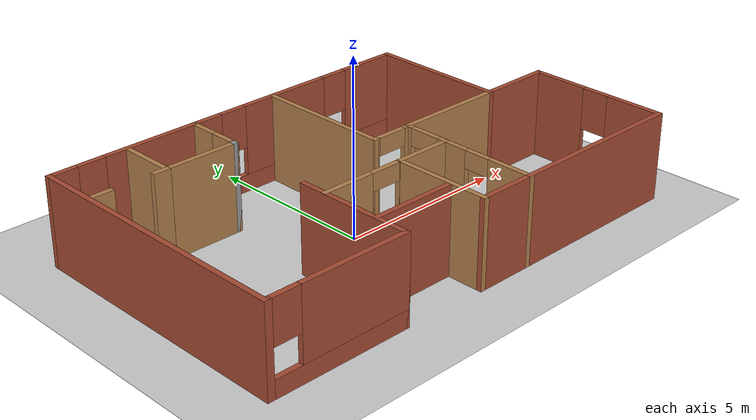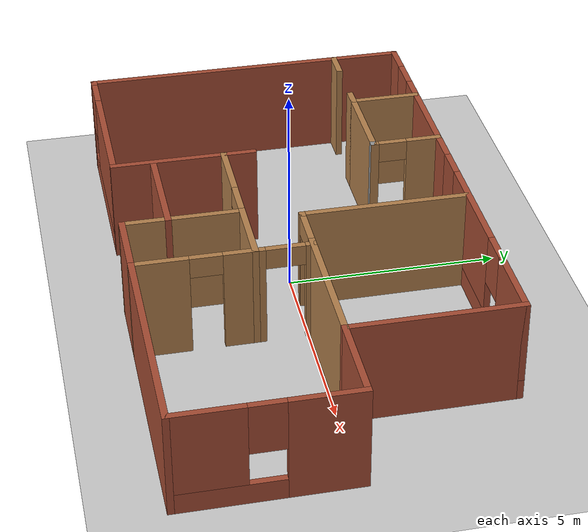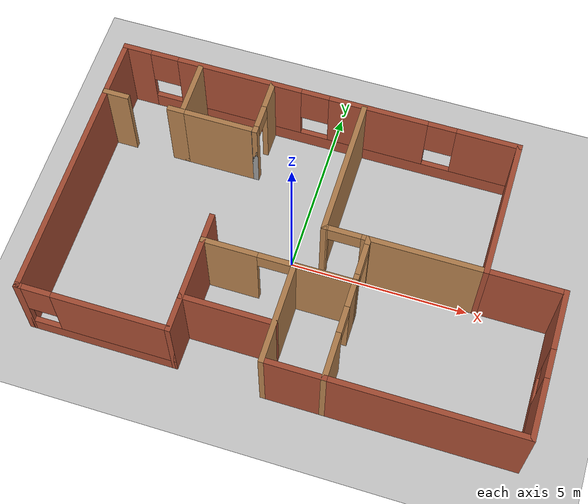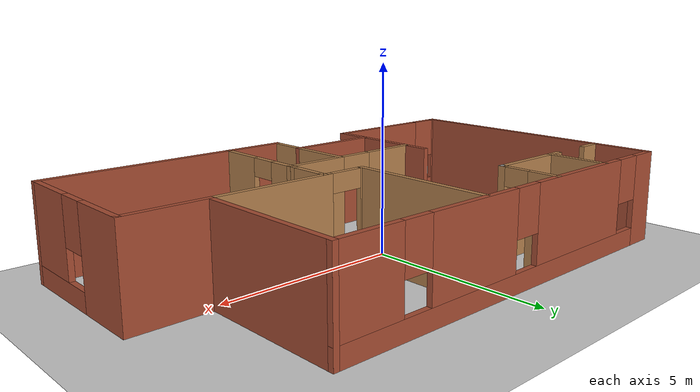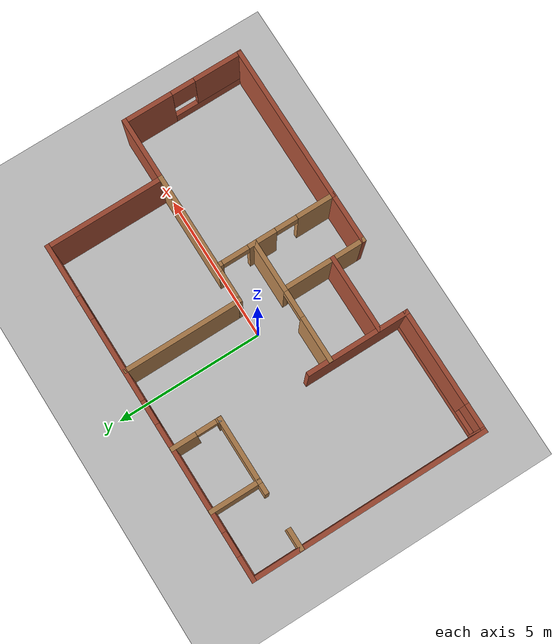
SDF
<sdf version="1.6">
 <world name="default">
  <light name="sun" type="directional">
   <pose>0 0 10 0 -0 0</pose>
   <diffuse>0.8 0.8 0.8 1</diffuse>
   <specular>0.2 0.2 0.2 1</specular>
   <attenuation>
    <range>1000</range>
    <constant>0.9</constant>
    <linear>0.01</linear>
    <quadratic>0.001</quadratic>
   </attenuation>
   <direction>-0.5 0.1 -0.9</direction>
  </light>
  <model name="ground_plane">
   <static>1</static>
   <link name="link">
    <collision name="collision">
     <geometry><plane><normal>0 0 1</normal><size>100 100</size></plane></geometry>
     <surface>
      <contact><collide_bitmask>65535</collide_bitmask></contact>
      <friction><ode><mu>100</mu><mu2>50</mu2></ode></friction>
     </surface>
    </collision>
    <visual name="visual">
     <cast_shadows>0</cast_shadows>
     <geometry><plane><normal>0 0 1</normal><size>100 100</size></plane></geometry>
     <material>
      <script><uri>file://media/materials/scripts/gazebo.material</uri><name>Gazebo/Grey</name></script>
     </material>
    </visual>
   </link>
  </model>
  <gravity>0 0 -9.8</gravity>
  <magnetic_field>6e-06 2.3e-05 -4.2e-05</magnetic_field>
  <atmosphere type="adiabatic"/>
  <physics name="default_physics" default="0" type="ode">
   <max_step_size>0.001</max_step_size>
   <real_time_factor>1</real_time_factor>
   <real_time_update_rate>1000</real_time_update_rate>
  </physics>
  <scene><ambient>0.4 0.4 0.4 1</ambient><background>0.7 0.7 0.7 1</background><shadows>1</shadows></scene>
  <audio><device>default</device></audio>
  <spherical_coordinates>
   <surface_model>EARTH_WGS84</surface_model>
   <latitude_deg>0</latitude_deg>
   <longitude_deg>0</longitude_deg>
   <elevation>0</elevation>
   <heading_deg>0</heading_deg>
  </spherical_coordinates>
  <model name="shreerang_2">
   <pose>0.5517 0.057998 0 0 -0 0</pose>
   <link name="Wall_0">
    <collision name="Wall_0_Collision">
     <geometry><box><size>8 0.15 2.5</size></box></geometry>
     <pose>0 0 1.25 0 -0 0</pose>
    </collision>
    <visual name="Wall_0_Visual">
     <pose>0 0 1.25 0 -0 0</pose>
     <geometry><box><size>8 0.15 2.5</size></box></geometry>
     <material>
      <script><uri>file://media/materials/scripts/gazebo.material</uri><name>Gazebo/Bricks</name></script>
      <ambient>1 1 1 1</ambient>
     </material>
     <meta><layer>0</layer></meta>
    </visual>
    <pose>-6.71199 0.050252 0 0 -0 -1.5708</pose>
   </link>
   <link name="Wall_1">
    <pose>-4.66199 -3.87475 0 0 -0 0</pose>
    <visual name="Wall_1_Visual_0">
     <pose>-2.02 0 1.25 0 -0 0</pose>
     <geometry><box><size>0.209993 0.15 2.5</size></box></geometry>
     <material>
      <script><uri>file://media/materials/scripts/gazebo.material</uri><name>Gazebo/Bricks</name></script>
      <ambient>1 1 1 1</ambient>
     </material>
     <meta><layer>0</layer></meta>
    </visual>
    <collision name="Wall_1_Collision_0">
     <geometry><box><size>0.209993 0.15 2.5</size></box></geometry>
     <pose>-2.02 0 1.25 0 -0 0</pose>
    </collision>
    <visual name="Wall_1_Visual_1">
     <pose>0.104997 0 0.25 0 -0 0</pose>
     <geometry><box><size>4.04001 0.15 0.5</size></box></geometry>
     <material>
      <script><uri>file://media/materials/scripts/gazebo.material</uri><name>Gazebo/Bricks</name></script>
      <ambient>1 1 1 1</ambient>
     </material>
     <meta><layer>0</layer></meta>
    </visual>
    <collision name="Wall_1_Collision_1">
     <geometry><box><size>4.04001 0.15 0.5</size></box></geometry>
     <pose>0.104997 0 0.25 0 -0 0</pose>
    </collision>
    <visual name="Wall_1_Visual_2">
     <pose>0.504997 0 1.5 0 -0 0</pose>
     <geometry><box><size>3.24001 0.15 2</size></box></geometry>
     <material>
      <script><uri>file://media/materials/scripts/gazebo.material</uri><name>Gazebo/Bricks</name></script>
      <ambient>1 1 1 1</ambient>
     </material>
     <meta><layer>0</layer></meta>
    </visual>
    <collision name="Wall_1_Collision_2">
     <geometry><box><size>3.24001 0.15 2</size></box></geometry>
     <pose>0.504997 0 1.5 0 -0 0</pose>
    </collision>
    <visual name="Wall_1_Visual_3">
     <pose>-1.51501 0 1.9 0 -0 0</pose>
     <geometry><box><size>0.8 0.15 1.2</size></box></geometry>
     <material>
      <script><uri>file://media/materials/scripts/gazebo.material</uri><name>Gazebo/Bricks</name></script>
      <ambient>1 1 1 1</ambient>
     </material>
     <meta><layer>0</layer></meta>
    </visual>
    <collision name="Wall_1_Collision_3">
     <geometry><box><size>0.8 0.15 1.2</size></box></geometry>
     <pose>-1.51501 0 1.9 0 -0 0</pose>
    </collision>
   </link>
   <link name="Wall_11">
    <pose>-1.03699 3.97508 0 0 -0 -3.1e-05</pose>
    <visual name="Wall_11_Visual_0">
     <pose>-5.33 0 1.25 0 -0 0</pose>
     <geometry><box><size>0.840002 0.15 2.5</size></box></geometry>
     <material>
      <script><uri>file://media/materials/scripts/gazebo.material</uri><name>Gazebo/Bricks</name></script>
      <ambient>1 1 1 1</ambient>
     </material>
     <meta><layer>0</layer></meta>
    </visual>
    <collision name="Wall_11_Collision_0">
     <geometry><box><size>0.840002 0.15 2.5</size></box></geometry>
     <pose>-5.33 0 1.25 0 -0 0</pose>
    </collision>
    <visual name="Wall_11_Visual_1">
     <pose>0.420001 0 0.25 0 -0 0</pose>
     <geometry><box><size>10.66 0.15 0.5</size></box></geometry>
     <material>
      <script><uri>file://media/materials/scripts/gazebo.material</uri><name>Gazebo/Bricks</name></script>
      <ambient>1 1 1 1</ambient>
     </material>
     <meta><layer>0</layer></meta>
    </visual>
    <collision name="Wall_11_Collision_1">
     <geometry><box><size>10.66 0.15 0.5</size></box></geometry>
     <pose>0.420001 0 0.25 0 -0 0</pose>
    </collision>
    <visual name="Wall_11_Visual_2">
     <pose>-2.295 0 1.5 0 -0 0</pose>
     <geometry><box><size>3.63 0.15 2</size></box></geometry>
     <material>
      <script><uri>file://media/materials/scripts/gazebo.material</uri><name>Gazebo/Bricks</name></script>
      <ambient>1 1 1 1</ambient>
     </material>
     <meta><layer>0</layer></meta>
    </visual>
    <collision name="Wall_11_Collision_2">
     <geometry><box><size>3.63 0.15 2</size></box></geometry>
     <pose>-2.295 0 1.5 0 -0 0</pose>
    </collision>
    <visual name="Wall_11_Visual_3">
     <pose>1.725 0 1.5 0 -0 0</pose>
     <geometry><box><size>2.81 0.15 2</size></box></geometry>
     <material>
      <script><uri>file://media/materials/scripts/gazebo.material</uri><name>Gazebo/Bricks</name></script>
      <ambient>1 1 1 1</ambient>
     </material>
     <meta><layer>0</layer></meta>
    </visual>
    <collision name="Wall_11_Collision_3">
     <geometry><box><size>2.81 0.15 2</size></box></geometry>
     <pose>1.725 0 1.5 0 -0 0</pose>
    </collision>
    <visual name="Wall_11_Visual_4">
     <pose>4.84 0 1.5 0 -0 0</pose>
     <geometry><box><size>1.82 0.15 2</size></box></geometry>
     <material>
      <script><uri>file://media/materials/scripts/gazebo.material</uri><name>Gazebo/Bricks</name></script>
      <ambient>1 1 1 1</ambient>
     </material>
     <meta><layer>0</layer></meta>
    </visual>
    <collision name="Wall_11_Collision_4">
     <geometry><box><size>1.82 0.15 2</size></box></geometry>
     <pose>4.84 0 1.5 0 -0 0</pose>
    </collision>
    <visual name="Wall_11_Visual_5">
     <pose>-4.51 0 1.9 0 -0 0</pose>
     <geometry><box><size>0.8 0.15 1.2</size></box></geometry>
     <material>
      <script><uri>file://media/materials/scripts/gazebo.material</uri><name>Gazebo/Bricks</name></script>
      <ambient>1 1 1 1</ambient>
     </material>
     <meta><layer>0</layer></meta>
    </visual>
    <collision name="Wall_11_Collision_5">
     <geometry><box><size>0.8 0.15 1.2</size></box></geometry>
     <pose>-4.51 0 1.9 0 -0 0</pose>
    </collision>
    <visual name="Wall_11_Visual_6">
     <pose>-0.080001 0 1.9 0 -0 0</pose>
     <geometry><box><size>0.8 0.15 1.2</size></box></geometry>
     <material>
      <script><uri>file://media/materials/scripts/gazebo.material</uri><name>Gazebo/Bricks</name></script>
      <ambient>1 1 1 1</ambient>
     </material>
     <meta><layer>0</layer></meta>
    </visual>
    <collision name="Wall_11_Collision_6">
     <geometry><box><size>0.8 0.15 1.2</size></box></geometry>
     <pose>-0.080001 0 1.9 0 -0 0</pose>
    </collision>
    <visual name="Wall_11_Visual_7">
     <pose>3.53 0 1.9 0 -0 0</pose>
     <geometry><box><size>0.8 0.15 1.2</size></box></geometry>
     <material>
      <script><uri>file://media/materials/scripts/gazebo.material</uri><name>Gazebo/Bricks</name></script>
      <ambient>1 1 1 1</ambient>
     </material>
     <meta><layer>0</layer></meta>
    </visual>
    <collision name="Wall_11_Collision_7">
     <geometry><box><size>0.8 0.15 1.2</size></box></geometry>
     <pose>3.53 0 1.9 0 -0 0</pose>
    </collision>
   </link>
   <link name="Wall_12">
    <collision name="Wall_12_Collision">
     <geometry><box><size>4.05926 0.15 2.5</size></box></geometry>
     <pose>0 0 1.25 0 -0 0</pose>
    </collision>
    <visual name="Wall_12_Visual">
     <pose>0 0 1.25 0 -0 0</pose>
     <geometry><box><size>4.05926 0.15 2.5</size></box></geometry>
     <material>
      <script><uri>file://media/materials/scripts/gazebo.material</uri><name>Gazebo/Bricks</name></script>
      <ambient>1 1 1 1</ambient>
     </material>
     <meta><layer>0</layer></meta>
    </visual>
    <pose>4.638 2.0204 0 0 -0 -1.5708</pose>
   </link>
   <link name="Wall_13">
    <collision name="Wall_13_Collision">
     <geometry><box><size>2.224 0.15 2.5</size></box></geometry>
     <pose>0 0 1.25 0 -0 0</pose>
    </collision>
    <visual name="Wall_13_Visual">
     <pose>0 0 1.25 0 -0 0</pose>
     <geometry><box><size>2.224 0.15 2.5</size></box></geometry>
     <material>
      <script><uri>file://media/materials/scripts/gazebo.material</uri><name>Gazebo/Bricks</name></script>
      <ambient>1 1 1 1</ambient>
     </material>
     <meta><layer>0</layer></meta>
    </visual>
    <pose>5.675 0.065902 0 0 -0 0</pose>
   </link>
   <link name="Wall_14">
    <pose>6.712 -1.9546 0 0 -0 -1.5708</pose>
    <visual name="Wall_14_Visual_0">
     <pose>-1.24534 0 1.25 0 -0 0</pose>
     <geometry><box><size>1.70023 0.15 2.5</size></box></geometry>
     <material>
      <script><uri>file://media/materials/scripts/gazebo.material</uri><name>Gazebo/Bricks</name></script>
      <ambient>1 1 1 1</ambient>
     </material>
     <meta><layer>0</layer></meta>
    </visual>
    <collision name="Wall_14_Collision_0">
     <geometry><box><size>1.70023 0.15 2.5</size></box></geometry>
     <pose>-1.24534 0 1.25 0 -0 0</pose>
    </collision>
    <visual name="Wall_14_Visual_1">
     <pose>0.850113 0 0.25 0 -0 0</pose>
     <geometry><box><size>2.49068 0.15 0.5</size></box></geometry>
     <material>
      <script><uri>file://media/materials/scripts/gazebo.material</uri><name>Gazebo/Bricks</name></script>
      <ambient>1 1 1 1</ambient>
     </material>
     <meta><layer>0</layer></meta>
    </visual>
    <collision name="Wall_14_Collision_1">
     <geometry><box><size>2.49068 0.15 0.5</size></box></geometry>
     <pose>0.850113 0 0.25 0 -0 0</pose>
    </collision>
    <visual name="Wall_14_Visual_2">
     <pose>1.25011 0 1.5 0 -0 0</pose>
     <geometry><box><size>1.69068 0.15 2</size></box></geometry>
     <material>
      <script><uri>file://media/materials/scripts/gazebo.material</uri><name>Gazebo/Bricks</name></script>
      <ambient>1 1 1 1</ambient>
     </material>
     <meta><layer>0</layer></meta>
    </visual>
    <collision name="Wall_14_Collision_2">
     <geometry><box><size>1.69068 0.15 2</size></box></geometry>
     <pose>1.25011 0 1.5 0 -0 0</pose>
    </collision>
    <visual name="Wall_14_Visual_3">
     <pose>0.004771 0 1.9 0 -0 0</pose>
     <geometry><box><size>0.8 0.15 1.2</size></box></geometry>
     <material>
      <script><uri>file://media/materials/scripts/gazebo.material</uri><name>Gazebo/Bricks</name></script>
      <ambient>1 1 1 1</ambient>
     </material>
     <meta><layer>0</layer></meta>
    </visual>
    <collision name="Wall_14_Collision_3">
     <geometry><box><size>0.8 0.15 1.2</size></box></geometry>
     <pose>0.004771 0 1.9 0 -0 0</pose>
    </collision>
   </link>
   <link name="Wall_15">
    <collision name="Wall_15_Collision">
     <geometry><box><size>5.364 0.15 2.5</size></box></geometry>
     <pose>0 0 1.25 0 -0 0</pose>
    </collision>
    <visual name="Wall_15_Visual">
     <pose>0 0 1.25 0 -0 0</pose>
     <geometry><box><size>5.364 0.15 2.5</size></box></geometry>
     <material>
      <script><uri>file://media/materials/scripts/gazebo.material</uri><name>Gazebo/Bricks</name></script>
      <ambient>1 1 1 1</ambient>
     </material>
     <meta><layer>0</layer></meta>
    </visual>
    <pose>4.105 -3.9751 0 0 -0 3.14159</pose>
   </link>
   <link name="Wall_18">
    <pose>2.463 0.065902 0 0 -0 3.14159</pose>
    <visual name="Wall_18_Visual_0">
     <pose>-0.544586 0 1.25 0 -0 0</pose>
     <geometry><box><size>3.41083 0.15 2.5</size></box></geometry>
     <material>
      <script><uri>file://media/materials/scripts/gazebo.material</uri><name>Gazebo/Wood</name></script>
      <ambient>1 1 1 1</ambient>
     </material>
     <meta><layer>0</layer></meta>
    </visual>
    <collision name="Wall_18_Collision_0">
     <geometry><box><size>3.41083 0.15 2.5</size></box></geometry>
     <pose>-0.544586 0 1.25 0 -0 0</pose>
    </collision>
    <visual name="Wall_18_Visual_1">
     <pose>2.15541 0 1.25 0 -0 0</pose>
     <geometry><box><size>0.189172 0.15 2.5</size></box></geometry>
     <material>
      <script><uri>file://media/materials/scripts/gazebo.material</uri><name>Gazebo/Wood</name></script>
      <ambient>1 1 1 1</ambient>
     </material>
     <meta><layer>0</layer></meta>
    </visual>
    <collision name="Wall_18_Collision_1">
     <geometry><box><size>0.189172 0.15 2.5</size></box></geometry>
     <pose>2.15541 0 1.25 0 -0 0</pose>
    </collision>
    <visual name="Wall_18_Visual_2">
     <pose>1.61083 0 2.25 0 -0 0</pose>
     <geometry><box><size>0.9 0.15 0.5</size></box></geometry>
     <material>
      <script><uri>file://media/materials/scripts/gazebo.material</uri><name>Gazebo/Wood</name></script>
      <ambient>1 1 1 1</ambient>
     </material>
     <meta><layer>0</layer></meta>
    </visual>
    <collision name="Wall_18_Collision_2">
     <geometry><box><size>0.9 0.15 0.5</size></box></geometry>
     <pose>1.61083 0 2.25 0 -0 0</pose>
    </collision>
   </link>
   <link name="Wall_19">
    <collision name="Wall_19_Collision">
     <geometry><box><size>4 0.15 2.5</size></box></geometry>
     <pose>0 0 1.25 0 -0 0</pose>
    </collision>
    <visual name="Wall_19_Visual">
     <pose>0 0 1.25 0 -0 0</pose>
     <geometry><box><size>4 0.15 2.5</size></box></geometry>
     <material>
      <script><uri>file://media/materials/scripts/gazebo.material</uri><name>Gazebo/Wood</name></script>
      <ambient>1 1 1 1</ambient>
     </material>
     <meta><layer>0</layer></meta>
    </visual>
    <pose>0.287997 1.9909 0 0 -0 1.5708</pose>
   </link>
   <link name="Wall_2">
    <collision name="Wall_2_Collision">
     <geometry><box><size>3.5 0.15 2.5</size></box></geometry>
     <pose>0 0 1.25 0 -0 0</pose>
    </collision>
    <visual name="Wall_2_Visual">
     <pose>0 0 1.25 0 -0 0</pose>
     <geometry><box><size>3.5 0.15 2.5</size></box></geometry>
     <material>
      <script><uri>file://media/materials/scripts/gazebo.material</uri><name>Gazebo/Bricks</name></script>
      <ambient>1 1 1 1</ambient>
     </material>
     <meta><layer>0</layer></meta>
    </visual>
    <pose>-2.61199 -2.19975 0 0 -0 1.5708</pose>
   </link>
   <link name="Wall_21">
    <collision name="Wall_21_Collision">
     <geometry><box><size>1.75 0.15 2.5</size></box></geometry>
     <pose>0 0 1.25 0 -0 0</pose>
    </collision>
    <visual name="Wall_21_Visual">
     <pose>0 0 1.25 0 -0 0</pose>
     <geometry><box><size>1.75 0.15 2.5</size></box></geometry>
     <material>
      <script><uri>file://media/materials/scripts/gazebo.material</uri><name>Gazebo/Wood</name></script>
      <ambient>1 1 1 1</ambient>
     </material>
     <meta><layer>0</layer></meta>
    </visual>
    <pose>-4.46537 3.16438 0 0 -0 -1.5708</pose>
   </link>
   <link name="Wall_22">
    <collision name="Wall_22_Collision">
     <geometry><box><size>2.25 0.15 2.5</size></box></geometry>
     <pose>0 0 1.25 0 -0 0</pose>
    </collision>
    <visual name="Wall_22_Visual">
     <pose>0 0 1.25 0 -0 0</pose>
     <geometry><box><size>2.25 0.15 2.5</size></box></geometry>
     <material>
      <script><uri>file://media/materials/scripts/gazebo.material</uri><name>Gazebo/Wood</name></script>
      <ambient>1 1 1 1</ambient>
     </material>
     <meta><layer>0</layer></meta>
    </visual>
    <pose>-3.41536 2.36438 0 0 -0 0</pose>
   </link>
   <link name="Wall_23">
    <collision name="Wall_23_Collision">
     <geometry><box><size>0.16 0.15 2.5</size></box></geometry>
     <pose>0 0 1.25 0 -0 0</pose>
    </collision>
    <visual name="Wall_23_Visual">
     <pose>0 0 1.25 0 -0 0</pose>
     <geometry><box><size>0.16 0.15 2.5</size></box></geometry>
     <material>
      <script><uri>file://media/materials/scripts/gazebo.material</uri><name>Gazebo/Grey</name></script>
      <ambient>1 1 1 1</ambient>
     </material>
     <meta><layer>0</layer></meta>
    </visual>
    <pose>-2.36036 2.36438 0 0 -0 0</pose>
   </link>
   <link name="Wall_24">
    <pose>-2.35536 3.16438 0 0 -0 1.5708</pose>
    <visual name="Wall_24_Visual_0">
     <pose>-0.773047 0 1.25 0 -0 0</pose>
     <geometry><box><size>0.203905 0.15 2.5</size></box></geometry>
     <material>
      <script><uri>file://media/materials/scripts/gazebo.material</uri><name>Gazebo/Wood</name></script>
      <ambient>1 1 1 1</ambient>
     </material>
     <meta><layer>0</layer></meta>
    </visual>
    <collision name="Wall_24_Collision_0">
     <geometry><box><size>0.203905 0.15 2.5</size></box></geometry>
     <pose>-0.773047 0 1.25 0 -0 0</pose>
    </collision>
    <visual name="Wall_24_Visual_1">
     <pose>0.441709 0 1.25 0 -0 0</pose>
     <geometry><box><size>0.866582 0.15 2.5</size></box></geometry>
     <material>
      <script><uri>file://media/materials/scripts/gazebo.material</uri><name>Gazebo/Wood</name></script>
      <ambient>1 1 1 1</ambient>
     </material>
     <meta><layer>0</layer></meta>
    </visual>
    <collision name="Wall_24_Collision_1">
     <geometry><box><size>0.866582 0.15 2.5</size></box></geometry>
     <pose>0.441709 0 1.25 0 -0 0</pose>
    </collision>
    <visual name="Wall_24_Visual_2">
     <pose>-0.331338 0 2.25 0 -0 0</pose>
     <geometry><box><size>0.679513 0.15 0.5</size></box></geometry>
     <material>
      <script><uri>file://media/materials/scripts/gazebo.material</uri><name>Gazebo/Wood</name></script>
      <ambient>1 1 1 1</ambient>
     </material>
     <meta><layer>0</layer></meta>
    </visual>
    <collision name="Wall_24_Collision_2">
     <geometry><box><size>0.679513 0.15 0.5</size></box></geometry>
     <pose>-0.331338 0 2.25 0 -0 0</pose>
    </collision>
   </link>
   <link name="Wall_26">
    <collision name="Wall_26_Collision">
     <geometry><box><size>0.75 0.15 2.5</size></box></geometry>
     <pose>0 0 1.25 0 -0 0</pose>
    </collision>
    <visual name="Wall_26_Visual">
     <pose>0 0 1.25 0 -0 0</pose>
     <geometry><box><size>0.75 0.15 2.5</size></box></geometry>
     <material>
      <script><uri>file://media/materials/scripts/gazebo.material</uri><name>Gazebo/Wood</name></script>
      <ambient>1 1 1 1</ambient>
     </material>
     <meta><layer>0</layer></meta>
    </visual>
    <pose>-6.398 2.3639 0 0 -0 0</pose>
   </link>
   <link name="Wall_28">
    <collision name="Wall_28_Collision">
     <geometry><box><size>0.5 0.15 2.5</size></box></geometry>
     <pose>0 0 1.25 0 -0 0</pose>
    </collision>
    <visual name="Wall_28_Visual">
     <pose>0 0 1.25 0 -0 0</pose>
     <geometry><box><size>0.5 0.15 2.5</size></box></geometry>
     <material>
      <script><uri>file://media/materials/scripts/gazebo.material</uri><name>Gazebo/Wood</name></script>
      <ambient>1 1 1 1</ambient>
     </material>
     <meta><layer>0</layer></meta>
    </visual>
    <pose>-4.64037 2.36438 0 0 -0 3.14159</pose>
   </link>
   <link name="Wall_31">
    <pose>1.498 -0.585598 0 0 -0 1.5708</pose>
    <visual name="Wall_31_Visual_0">
     <pose>-0.575814 0 1.25 0 -0 0</pose>
     <geometry><box><size>0.301371 0.15 2.5</size></box></geometry>
     <material>
      <script><uri>file://media/materials/scripts/gazebo.material</uri><name>Gazebo/Wood</name></script>
      <ambient>1 1 1 1</ambient>
     </material>
     <meta><layer>0</layer></meta>
    </visual>
    <collision name="Wall_31_Collision_0">
     <geometry><box><size>0.301371 0.15 2.5</size></box></geometry>
     <pose>-0.575814 0 1.25 0 -0 0</pose>
    </collision>
    <visual name="Wall_31_Visual_1">
     <pose>0.600686 0 1.25 0 -0 0</pose>
     <geometry><box><size>0.251629 0.15 2.5</size></box></geometry>
     <material>
      <script><uri>file://media/materials/scripts/gazebo.material</uri><name>Gazebo/Wood</name></script>
      <ambient>1 1 1 1</ambient>
     </material>
     <meta><layer>0</layer></meta>
    </visual>
    <collision name="Wall_31_Collision_1">
     <geometry><box><size>0.251629 0.15 2.5</size></box></geometry>
     <pose>0.600686 0 1.25 0 -0 0</pose>
    </collision>
    <visual name="Wall_31_Visual_2">
     <pose>0.024871 0 2.25 0 -0 0</pose>
     <geometry><box><size>0.9 0.15 0.5</size></box></geometry>
     <material>
      <script><uri>file://media/materials/scripts/gazebo.material</uri><name>Gazebo/Wood</name></script>
      <ambient>1 1 1 1</ambient>
     </material>
     <meta><layer>0</layer></meta>
    </visual>
    <collision name="Wall_31_Collision_2">
     <geometry><box><size>0.9 0.15 0.5</size></box></geometry>
     <pose>0.024871 0 2.25 0 -0 0</pose>
    </collision>
   </link>
   <link name="Wall_4">
    <pose>-0.551913 -1.23694 0 0 -0 -7.6e-05</pose>
    <visual name="Wall_4_Visual_0">
     <pose>-1.34203 0 1.25 0 -0 0</pose>
     <geometry><box><size>1.56594 0.15 2.5</size></box></geometry>
     <material>
      <script><uri>file://media/materials/scripts/gazebo.material</uri><name>Gazebo/Wood</name></script>
      <ambient>1 1 1 1</ambient>
     </material>
     <meta><layer>0</layer></meta>
    </visual>
    <collision name="Wall_4_Collision_0">
     <geometry><box><size>1.56594 0.15 2.5</size></box></geometry>
     <pose>-1.34203 0 1.25 0 -0 0</pose>
    </collision>
    <visual name="Wall_4_Visual_1">
     <pose>1.23297 0 1.25 0 -0 0</pose>
     <geometry><box><size>1.78406 0.15 2.5</size></box></geometry>
     <material>
      <script><uri>file://media/materials/scripts/gazebo.material</uri><name>Gazebo/Wood</name></script>
      <ambient>1 1 1 1</ambient>
     </material>
     <meta><layer>0</layer></meta>
    </visual>
    <collision name="Wall_4_Collision_1">
     <geometry><box><size>1.78406 0.15 2.5</size></box></geometry>
     <pose>1.23297 0 1.25 0 -0 0</pose>
    </collision>
    <visual name="Wall_4_Visual_2">
     <pose>-0.109062 0 2.25 0 -0 0</pose>
     <geometry><box><size>0.9 0.15 0.5</size></box></geometry>
     <material>
      <script><uri>file://media/materials/scripts/gazebo.material</uri><name>Gazebo/Wood</name></script>
      <ambient>1 1 1 1</ambient>
     </material>
     <meta><layer>0</layer></meta>
    </visual>
    <collision name="Wall_4_Collision_2">
     <geometry><box><size>0.9 0.15 0.5</size></box></geometry>
     <pose>-0.109062 0 2.25 0 -0 0</pose>
    </collision>
   </link>
   <link name="Wall_5">
    <pose>1.498 -2.6061 0 0 -0 -1.5708</pose>
    <visual name="Wall_5_Visual_0">
     <pose>-1.0435 0 1.25 0 -0 0</pose>
     <geometry><box><size>0.801309 0.15 2.5</size></box></geometry>
     <material>
      <script><uri>file://media/materials/scripts/gazebo.material</uri><name>Gazebo/Wood</name></script>
      <ambient>1 1 1 1</ambient>
     </material>
     <meta><layer>0</layer></meta>
    </visual>
    <collision name="Wall_5_Collision_0">
     <geometry><box><size>0.801309 0.15 2.5</size></box></geometry>
     <pose>-1.0435 0 1.25 0 -0 0</pose>
    </collision>
    <visual name="Wall_5_Visual_1">
     <pose>0.772835 0 1.25 0 -0 0</pose>
     <geometry><box><size>1.34264 0.15 2.5</size></box></geometry>
     <material>
      <script><uri>file://media/materials/scripts/gazebo.material</uri><name>Gazebo/Wood</name></script>
      <ambient>1 1 1 1</ambient>
     </material>
     <meta><layer>0</layer></meta>
    </visual>
    <collision name="Wall_5_Collision_1">
     <geometry><box><size>1.34264 0.15 2.5</size></box></geometry>
     <pose>0.772835 0 1.25 0 -0 0</pose>
    </collision>
    <visual name="Wall_5_Visual_2">
     <pose>-0.270666 0 2.25 0 -0 0</pose>
     <geometry><box><size>0.744362 0.15 0.5</size></box></geometry>
     <material>
      <script><uri>file://media/materials/scripts/gazebo.material</uri><name>Gazebo/Wood</name></script>
      <ambient>1 1 1 1</ambient>
     </material>
     <meta><layer>0</layer></meta>
    </visual>
    <collision name="Wall_5_Collision_2">
     <geometry><box><size>0.744362 0.15 0.5</size></box></geometry>
     <pose>-0.270666 0 2.25 0 -0 0</pose>
    </collision>
   </link>
   <link name="Wall_6">
    <collision name="Wall_6_Collision">
     <geometry><box><size>1.774 0.15 2.5</size></box></geometry>
     <pose>0 0 1.25 0 -0 0</pose>
    </collision>
    <visual name="Wall_6_Visual">
     <pose>0 0 1.25 0 -0 0</pose>
     <geometry><box><size>1.774 0.15 2.5</size></box></geometry>
     <material>
      <script><uri>file://media/materials/scripts/gazebo.material</uri><name>Gazebo/Bricks</name></script>
      <ambient>1 1 1 1</ambient>
     </material>
     <meta><layer>0</layer></meta>
    </visual>
    <pose>0.685997 -3.9751 0 0 -0 3.14159</pose>
   </link>
   <link name="Wall_7">
    <collision name="Wall_7_Collision">
     <geometry><box><size>2.888 0.15 2.5</size></box></geometry>
     <pose>0 0 1.25 0 -0 0</pose>
    </collision>
    <visual name="Wall_7_Visual">
     <pose>0 0 1.25 0 -0 0</pose>
     <geometry><box><size>2.888 0.15 2.5</size></box></geometry>
     <material>
      <script><uri>file://media/materials/scripts/gazebo.material</uri><name>Gazebo/Wood</name></script>
      <ambient>1 1 1 1</ambient>
     </material>
     <meta><layer>0</layer></meta>
    </visual>
    <pose>-0.126003 -2.6061 0 0 -0 1.5708</pose>
   </link>
   <link name="Wall_9">
    <collision name="Wall_9_Collision">
     <geometry><box><size>2.626 0.15 2.5</size></box></geometry>
     <pose>0 0 1.25 0 -0 0</pose>
    </collision>
    <visual name="Wall_9_Visual">
     <pose>0 0 1.25 0 -0 0</pose>
     <geometry><box><size>2.626 0.15 2.5</size></box></geometry>
     <material>
      <script><uri>file://media/materials/scripts/gazebo.material</uri><name>Gazebo/Bricks</name></script>
      <ambient>1 1 1 1</ambient>
     </material>
     <meta><layer>0</layer></meta>
    </visual>
    <pose>-1.364 -2.9331 0 0 -0 3.14159</pose>
   </link>
   <static>1</static>
  </model>
 </world>
</sdf>
